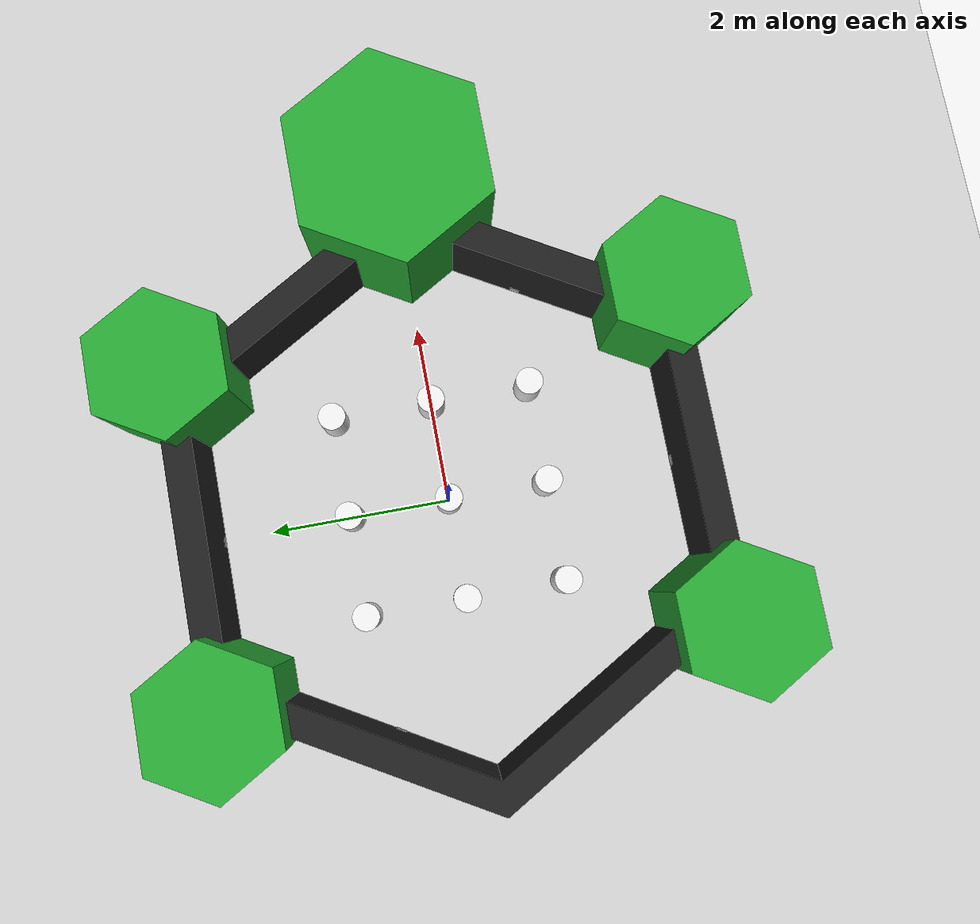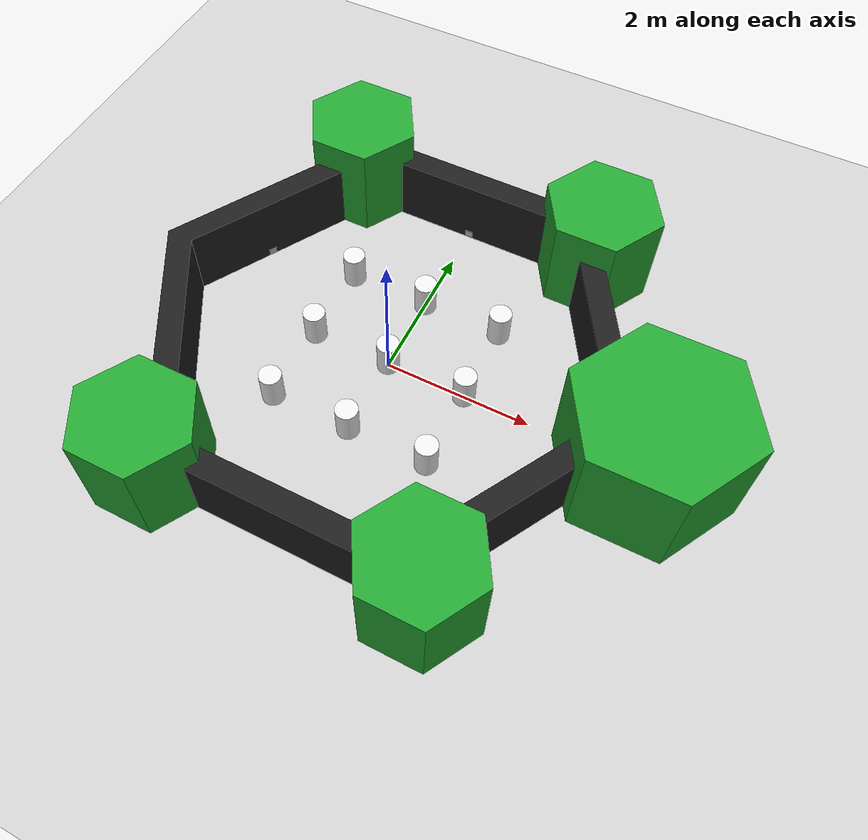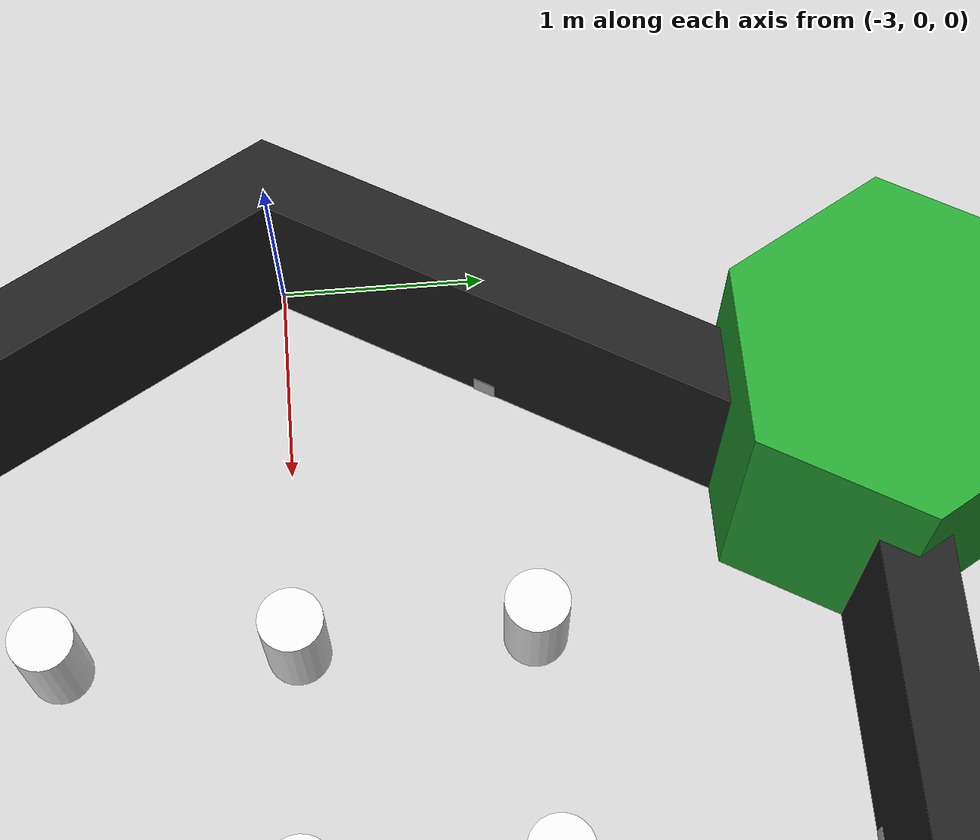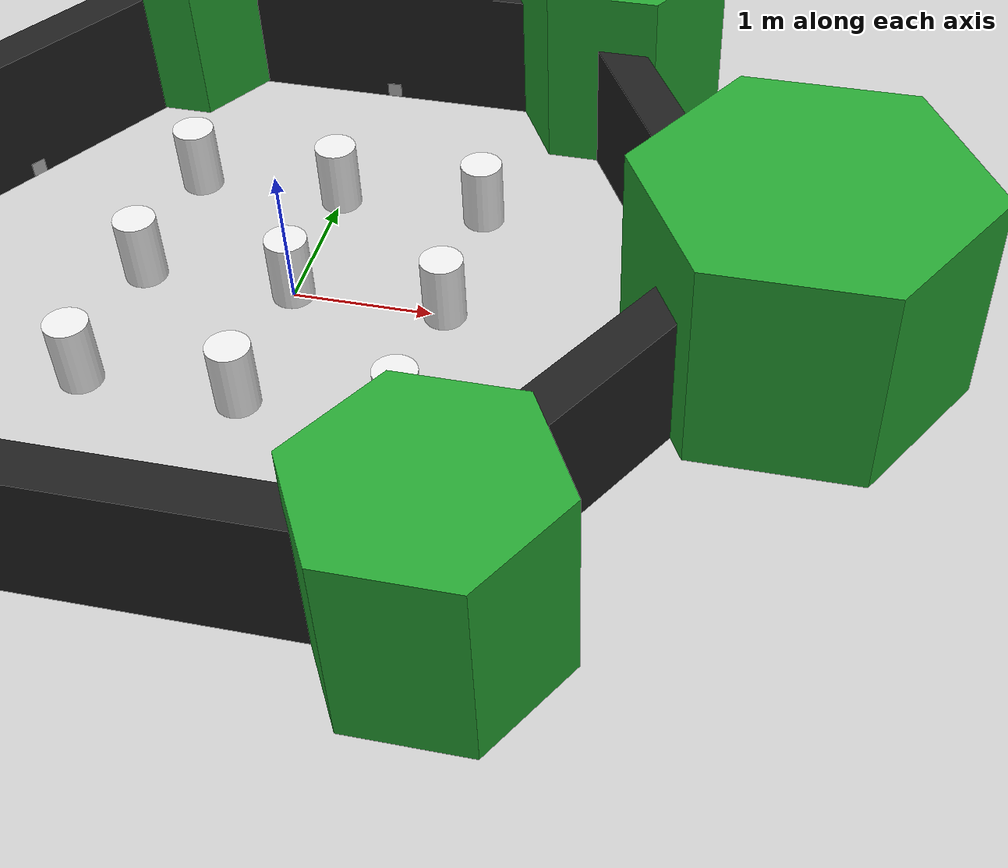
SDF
<sdf version="1.6">
 <world name="default">
  <light name="sun" type="directional">
   <pose>0 0 10 0 -0 0</pose>
   <diffuse>0.8 0.8 0.8 1</diffuse>
   <specular>0.2 0.2 0.2 1</specular>
   <attenuation>
    <range>1000</range>
    <constant>0.9</constant>
    <linear>0.01</linear>
    <quadratic>0.001</quadratic>
   </attenuation>
   <direction>-0.5 0.1 -0.9</direction>
  </light>
  <model name="ground_plane">
   <static>1</static>
   <link name="link">
    <collision name="collision">
     <geometry><plane><normal>0 0 1</normal><size>100 100</size></plane></geometry>
     <surface><friction><ode><mu>100</mu><mu2>50</mu2></ode></friction></surface>
    </collision>
    <visual name="visual">
     <cast_shadows>0</cast_shadows>
     <geometry><plane><normal>0 0 1</normal><size>100 100</size></plane></geometry>
     <material>
      <script><uri>file://media/materials/scripts/gazebo.material</uri><name>Gazebo/Grey</name></script>
     </material>
    </visual>
   </link>
  </model>
  <physics name="default_physics" default="0" type="ode">
   <real_time_update_rate>1000</real_time_update_rate>
   <max_step_size>0.001</max_step_size>
   <real_time_factor>1</real_time_factor>
   <ode>
    <solver>
     <type>quick</type>
     <iters>150</iters>
     <precon_iters>0</precon_iters>
     <sor>1.4</sor>
     <use_dynamic_moi_rescaling>1</use_dynamic_moi_rescaling>
    </solver>
    <constraints>
     <cfm>1e-05</cfm>
     <erp>0.2</erp>
     <contact_max_correcting_vel>2000</contact_max_correcting_vel>
     <contact_surface_layer>0.01</contact_surface_layer>
    </constraints>
   </ode>
  </physics>
  <model name="ros_symbol">
   <static>1</static>
   <link name="symbol">
    <collision name="one_one">
     <pose>-1.1 -1.1 0.25 0 -0 0</pose>
     <geometry><cylinder><radius>0.15</radius><length>0.5</length></cylinder></geometry>
    </collision>
    <visual name="one_one">
     <pose>-1.1 -1.1 0.25 0 -0 0</pose>
     <geometry><cylinder><radius>0.15</radius><length>0.5</length></cylinder></geometry>
     <material>
      <script><uri>file://media/materials/scripts/gazebo.material</uri><name>Gazebo/White</name></script>
     </material>
    </visual>
    <collision name="one_two">
     <pose>-1.1 0 0.25 0 -0 0</pose>
     <geometry><cylinder><radius>0.15</radius><length>0.5</length></cylinder></geometry>
    </collision>
    <visual name="one_two">
     <pose>-1.1 0 0.25 0 -0 0</pose>
     <geometry><cylinder><radius>0.15</radius><length>0.5</length></cylinder></geometry>
     <material>
      <script><uri>file://media/materials/scripts/gazebo.material</uri><name>Gazebo/White</name></script>
     </material>
    </visual>
    <collision name="one_three">
     <pose>-1.1 1.1 0.25 0 -0 0</pose>
     <geometry><cylinder><radius>0.15</radius><length>0.5</length></cylinder></geometry>
    </collision>
    <visual name="one_three">
     <pose>-1.1 1.1 0.25 0 -0 0</pose>
     <geometry><cylinder><radius>0.15</radius><length>0.5</length></cylinder></geometry>
     <material>
      <script><uri>file://media/materials/scripts/gazebo.material</uri><name>Gazebo/White</name></script>
     </material>
    </visual>
    <collision name="two_one">
     <pose>0 -1.1 0.25 0 -0 0</pose>
     <geometry><cylinder><radius>0.15</radius><length>0.5</length></cylinder></geometry>
    </collision>
    <visual name="two_one">
     <pose>0 -1.1 0.25 0 -0 0</pose>
     <geometry><cylinder><radius>0.15</radius><length>0.5</length></cylinder></geometry>
     <material>
      <script><uri>file://media/materials/scripts/gazebo.material</uri><name>Gazebo/White</name></script>
     </material>
    </visual>
    <collision name="two_two">
     <pose>0 0 0.25 0 -0 0</pose>
     <geometry><cylinder><radius>0.15</radius><length>0.5</length></cylinder></geometry>
    </collision>
    <visual name="two_two">
     <pose>0 0 0.25 0 -0 0</pose>
     <geometry><cylinder><radius>0.15</radius><length>0.5</length></cylinder></geometry>
     <material>
      <script><uri>file://media/materials/scripts/gazebo.material</uri><name>Gazebo/White</name></script>
     </material>
    </visual>
    <collision name="two_three">
     <pose>0 1.1 0.25 0 -0 0</pose>
     <geometry><cylinder><radius>0.15</radius><length>0.5</length></cylinder></geometry>
    </collision>
    <visual name="two_three">
     <pose>0 1.1 0.25 0 -0 0</pose>
     <geometry><cylinder><radius>0.15</radius><length>0.5</length></cylinder></geometry>
     <material>
      <script><uri>file://media/materials/scripts/gazebo.material</uri><name>Gazebo/White</name></script>
     </material>
    </visual>
    <collision name="three_one">
     <pose>1.1 -1.1 0.25 0 -0 0</pose>
     <geometry><cylinder><radius>0.15</radius><length>0.5</length></cylinder></geometry>
    </collision>
    <visual name="three_one">
     <pose>1.1 -1.1 0.25 0 -0 0</pose>
     <geometry><cylinder><radius>0.15</radius><length>0.5</length></cylinder></geometry>
     <material>
      <script><uri>file://media/materials/scripts/gazebo.material</uri><name>Gazebo/White</name></script>
     </material>
    </visual>
    <collision name="three_two">
     <pose>1.1 0 0.25 0 -0 0</pose>
     <geometry><cylinder><radius>0.15</radius><length>0.5</length></cylinder></geometry>
    </collision>
    <visual name="three_two">
     <pose>1.1 0 0.25 0 -0 0</pose>
     <geometry><cylinder><radius>0.15</radius><length>0.5</length></cylinder></geometry>
     <material>
      <script><uri>file://media/materials/scripts/gazebo.material</uri><name>Gazebo/White</name></script>
     </material>
    </visual>
    <collision name="three_three">
     <pose>1.1 1.1 0.25 0 -0 0</pose>
     <geometry><cylinder><radius>0.15</radius><length>0.5</length></cylinder></geometry>
    </collision>
    <visual name="three_three">
     <pose>1.1 1.1 0.25 0 -0 0</pose>
     <geometry><cylinder><radius>0.15</radius><length>0.5</length></cylinder></geometry>
     <material>
      <script><uri>file://media/materials/scripts/gazebo.material</uri><name>Gazebo/White</name></script>
     </material>
    </visual>
    <collision name="head">
     <pose>3.5 0 -0.5 0 -0 0</pose>
     <geometry>
      <mesh><uri>model://turtlebot3_world/meshes/hexagon.dae</uri><scale>0.8 0.8 0.8</scale></mesh>
     </geometry>
    </collision>
    <visual name="head">
     <pose>3.5 0 -0.5 0 -0 0</pose>
     <geometry>
      <mesh><uri>model://turtlebot3_world/meshes/hexagon.dae</uri><scale>0.8 0.8 0.8</scale></mesh>
     </geometry>
     <material>
      <script><uri>file://media/materials/scripts/gazebo.material</uri><name>Gazebo/Green</name></script>
     </material>
    </visual>
    <collision name="left_hand">
     <pose>1.8 2.7 0 0 -0 0</pose>
     <geometry>
      <mesh><uri>model://turtlebot3_world/meshes/hexagon.dae</uri><scale>0.55 0.55 0.55</scale></mesh>
     </geometry>
    </collision>
    <visual name="left_hand">
     <pose>1.8 2.7 0 0 -0 0</pose>
     <geometry>
      <mesh><uri>model://turtlebot3_world/meshes/hexagon.dae</uri><scale>0.55 0.55 0.55</scale></mesh>
     </geometry>
     <material>
      <script><uri>file://media/materials/scripts/gazebo.material</uri><name>Gazebo/Green</name></script>
     </material>
    </visual>
    <collision name="right_hand">
     <pose>1.8 -2.7 0 0 -0 0</pose>
     <geometry>
      <mesh><uri>model://turtlebot3_world/meshes/hexagon.dae</uri><scale>0.55 0.55 0.55</scale></mesh>
     </geometry>
    </collision>
    <visual name="right_hand">
     <pose>1.8 -2.7 0 0 -0 0</pose>
     <geometry>
      <mesh><uri>model://turtlebot3_world/meshes/hexagon.dae</uri><scale>0.55 0.55 0.55</scale></mesh>
     </geometry>
     <material>
      <script><uri>file://media/materials/scripts/gazebo.material</uri><name>Gazebo/Green</name></script>
     </material>
    </visual>
    <collision name="left_foot">
     <pose>-1.8 2.7 0 0 -0 0</pose>
     <geometry>
      <mesh><uri>model://turtlebot3_world/meshes/hexagon.dae</uri><scale>0.55 0.55 0.55</scale></mesh>
     </geometry>
    </collision>
    <visual name="left_foot">
     <pose>-1.8 2.7 0 0 -0 0</pose>
     <geometry>
      <mesh><uri>model://turtlebot3_world/meshes/hexagon.dae</uri><scale>0.55 0.55 0.55</scale></mesh>
     </geometry>
     <material>
      <script><uri>file://media/materials/scripts/gazebo.material</uri><name>Gazebo/Green</name></script>
     </material>
    </visual>
    <collision name="right_foot">
     <pose>-1.8 -2.7 0 0 -0 0</pose>
     <geometry>
      <mesh><uri>model://turtlebot3_world/meshes/hexagon.dae</uri><scale>0.55 0.55 0.55</scale></mesh>
     </geometry>
    </collision>
    <visual name="right_foot">
     <pose>-1.8 -2.7 0 0 -0 0</pose>
     <geometry>
      <mesh><uri>model://turtlebot3_world/meshes/hexagon.dae</uri><scale>0.55 0.55 0.55</scale></mesh>
     </geometry>
     <material>
      <script><uri>file://media/materials/scripts/gazebo.material</uri><name>Gazebo/Green</name></script>
     </material>
    </visual>
    <collision name="body">
     <pose>0 0 -0.3 0 0 -1.5708</pose>
     <geometry>
      <mesh><uri>model://turtlebot3_world/meshes/wall.dae</uri><scale>0.25 0.25 0.25</scale></mesh>
     </geometry>
    </collision>
    <visual name="body">
     <pose>0 0 -0.3 0 0 -1.5708</pose>
     <geometry>
      <mesh><uri>model://turtlebot3_world/meshes/wall.dae</uri><scale>0.25 0.25 0.25</scale></mesh>
     </geometry>
     <material>
      <script><uri>file://media/materials/scripts/gazebo.material</uri><name>Gazebo/FlatBlack</name></script>
     </material>
    </visual>
   </link>
  </model>
  <scene><ambient>0.4 0.4 0.4 1</ambient><background>0.7 0.7 0.7 1</background><shadows>1</shadows></scene>
  <gravity>0 0 -9.8</gravity>
  <magnetic_field>6e-06 2.3e-05 -4.2e-05</magnetic_field>
  <atmosphere type="adiabatic"/>
  <spherical_coordinates>
   <surface_model>EARTH_WGS84</surface_model>
   <latitude_deg>0</latitude_deg>
   <longitude_deg>0</longitude_deg>
   <elevation>0</elevation>
   <heading_deg>0</heading_deg>
  </spherical_coordinates>
  <model name="Marker13">
   <static>1</static>
   <link name="link">
    <visual name="visual">
     <geometry><mesh><uri>model://marker13/meshes/Marker13.dae</uri><scale>0.22 0.22 0.22</scale></mesh></geometry>
    </visual>
   </link>
   <pose>-0.00499 2.53863 0 0 -0 -1.57014</pose>
  </model>
  <model name="Marker1">
   <static>1</static>
   <link name="link">
    <visual name="visual">
     <geometry><mesh><uri>model://marker1/meshes/Marker1.dae</uri><scale>0.22 0.22 0.22</scale></mesh></geometry>
    </visual>
   </link>
   <pose>2.24983 -1.17744 0 0 -0 2.61051</pose>
  </model>
  <model name="Marker11">
   <static>1</static>
   <link name="link">
    <visual name="visual">
     <geometry><mesh><uri>model://marker11/meshes/Marker11.dae</uri><scale>0.22 0.22 0.22</scale></mesh></geometry>
    </visual>
   </link>
   <pose>-0.003705 -2.53764 0 0 -0 1.57782</pose>
  </model>
  <model name="Marker12">
   <static>1</static>
   <link name="link">
    <visual name="visual">
     <geometry><mesh><uri>model://marker12/meshes/Marker12.dae</uri><scale>0.22 0.22 0.22</scale></mesh></geometry>
    </visual>
   </link>
   <pose>-2.37144 0.962384 0 0 0 -0.525188</pose>
  </model>
 </world>
</sdf>
